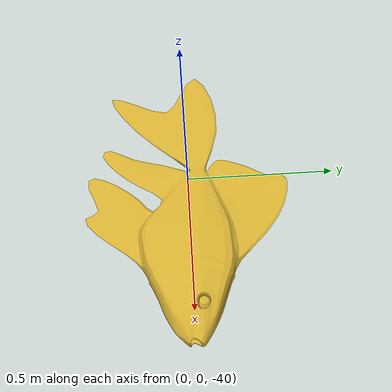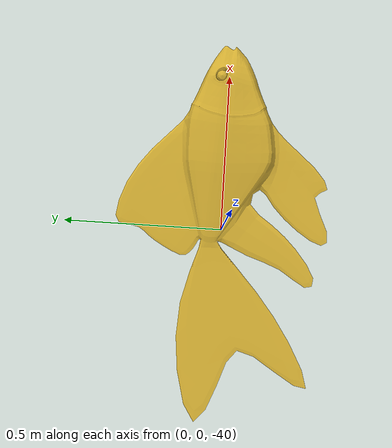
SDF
<?xml version="1.0" encoding="UTF-8"?>
<sdf version="1.6">
  <model name="goldenfishmodel">
    <pose>0 0 -40 0 0 0</pose>
    <static>true</static>

    <link name="goldenfishlink">
      <visual name="visual">
        <geometry>
          <mesh>
            <uri>model://goldenfish/meshes/Golden_Fish_DAE.DAE</uri>
            <scale>0.6 0.6 0.6</scale>
          </mesh>
        </geometry>
        <material>
          <script>
            <name>Fish/Golden</name>
            <uri>model://goldenfish/materials/textures</uri>
            <uri>model://goldenfish/materials/scripts</uri>
          </script>
        </material>
      </visual>
      <collision name="collision">
        <geometry>
          <mesh>
            <uri>model://goldenfish/meshes/Golden_Fish_DAE.DAE</uri>
            <scale>0.6 0.6 0.6</scale>
          </mesh>
        </geometry>
      </collision>
    </link>
  </model>
</sdf>
